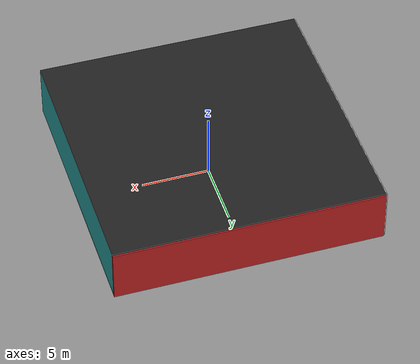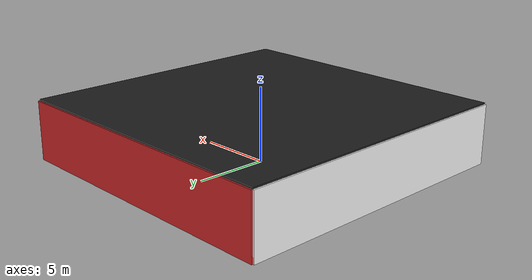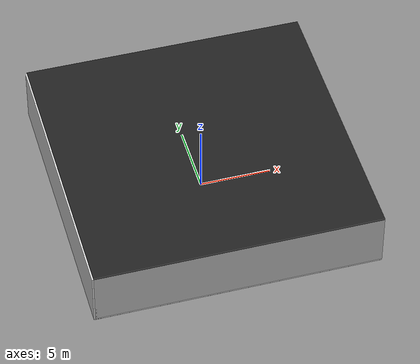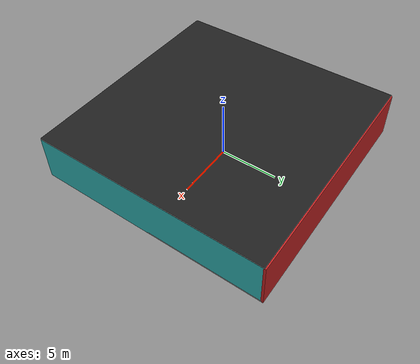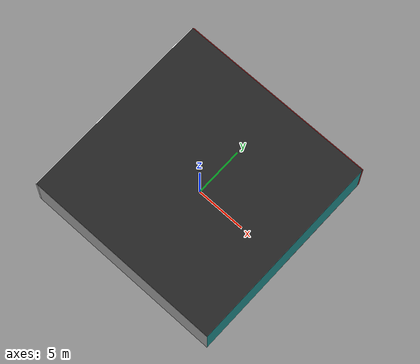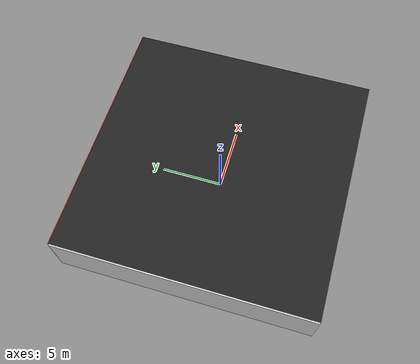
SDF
<sdf version="1.4">
 <world name="default">
  <physics type="ode">
   <max_step_size>0.001</max_step_size>
   <real_time_factor>1</real_time_factor>
   <real_time_update_rate>1000</real_time_update_rate>
   <gravity>0 0 -9.8</gravity>
  </physics>
  <scene><ambient>0.4 0.4 0.4 1</ambient><background>0.7 0.7 0.7 1</background><shadows>1</shadows></scene>
  <model name="Surrounding">
   <static>1</static>
   <link name="Ceiling">
    <collision name="Ceiling_Collision"><geometry><box><size>20 20 0.1</size></box></geometry></collision>
    <visual name="Ceiling_Visual">
     <geometry><box><size>20 20 0.1</size></box></geometry>
     <material>
      <script><uri>file://media/materials/scripts/gazebo.material</uri><name>Gazebo/FlatBlack</name></script>
     </material>
    </visual>
    <pose>0 0 4.05 0 0 0</pose>
   </link>
   <link name="Wall_South">
    <collision name="Wall_South_Collision">
     <geometry><box><size>20 0 4</size></box></geometry>
     <pose>0 0 2 0 -0 0</pose>
    </collision>
    <visual name="Wall_South_Visual">
     <pose>0 0 2 0 -0 0</pose>
     <geometry><box><size>20 0 4</size></box></geometry>
     <material>
      <script><uri>file://media/materials/scripts/gazebo.material</uri><name>Gazebo/PioneerBody</name></script>
     </material>
    </visual>
    <velocity_decay><linear>0</linear><angular>0</angular></velocity_decay>
    <pose>0 -10 0 0 -0 0</pose>
   </link>
   <link name="Wall_East">
    <collision name="Wall_21_Collision">
     <geometry><box><size>20 0 4</size></box></geometry>
     <pose>0 0 2 0 -0 0</pose>
    </collision>
    <visual name="Wall_21_Visual">
     <pose>0 0 2 0 -0 0</pose>
     <geometry><box><size>20 0 4</size></box></geometry>
     <material>
      <script><uri>file://media/materials/scripts/gazebo.material</uri><name>Gazebo/Turquoise</name></script>
     </material>
    </visual>
    <velocity_decay><linear>0</linear><angular>0</angular></velocity_decay>
    <pose>10 0 0 0 -0 1.5708</pose>
   </link>
   <link name="Wall_North">
    <collision name="Wall_22_Collision">
     <geometry><box><size>20 0.2 4</size></box></geometry>
     <pose>0 0 2 0 -0 0</pose>
    </collision>
    <visual name="Wall_22_Visual">
     <pose>0 0 2 0 -0 0</pose>
     <geometry><box><size>20 0.2 4</size></box></geometry>
     <material>
      <script><uri>file://media/materials/scripts/gazebo.material</uri><name>Gazebo/RedGlow</name></script>
     </material>
    </visual>
    <velocity_decay><linear>0</linear><angular>0</angular></velocity_decay>
    <pose>0 10 0 0 -0 0</pose>
   </link>
   <link name="Wall_West">
    <collision name="Wall_23_Collision">
     <geometry><box><size>20 0.2 4</size></box></geometry>
     <pose>0 0 2 0 -0 0</pose>
    </collision>
    <visual name="Wall_23_Visual">
     <pose>0 0 2 0 -0 0</pose>
     <geometry><box><size>20 0.2 4</size></box></geometry>
     <material>
      <script><uri>file://media/materials/scripts/gazebo.material</uri><name>Gazebo/White</name></script>
     </material>
    </visual>
    <velocity_decay><linear>0</linear><angular>0</angular></velocity_decay>
    <pose>-10 0 0 0 0 -1.5708</pose>
   </link>
   <link name="Ground_link">
    <collision name="collision">
     <pose>0 0 .05 0 -0 0</pose>
     <geometry><box><size>20 20 0.1</size></box></geometry>
    </collision>
    <visual name="visual">
     <pose>0 0 .05 0 -0 0</pose>
     <geometry><box><size>20 20 0.1</size></box></geometry>
     <material>
      <script><uri>file://media/materials/scripts/gazebo.material</uri><name>Gazebo/White</name></script>
     </material>
    </visual>
   </link>
   <static>1</static>
  </model>
  <spherical_coordinates>
   <surface_model>EARTH_WGS84</surface_model>
   <latitude_deg>0</latitude_deg>
   <longitude_deg>0</longitude_deg>
   <elevation>0</elevation>
   <heading_deg>0</heading_deg>
  </spherical_coordinates>
  <light name="lightball_0" type="diffuse">
   <diffuse>0.8 0.8 0.8 1</diffuse>
   <specular>0.2 0.2 0.2 1</specular>
   <attenuation>
    <range>100</range>
    <constant>0.7</constant>
    <linear>0.01</linear>
    <quadratic>0.001</quadratic>
   </attenuation>
   <direction>-0.5 0.1 -0.9</direction>
   <pose>6.83384345269 7.25154105673 2.0656657755 0 0 0</pose>
  </light>
  <light name="lightball_1" type="diffuse">
   <diffuse>0.8 0.8 0.8 1</diffuse>
   <specular>0.2 0.2 0.2 1</specular>
   <attenuation>
    <range>100</range>
    <constant>0.7</constant>
    <linear>0.01</linear>
    <quadratic>0.001</quadratic>
   </attenuation>
   <direction>-0.5 0.1 -0.9</direction>
   <pose>8.90981618164 1.24757376152 3.7218367911 0 0 0</pose>
  </light>
  <light name="lightball_2" type="diffuse">
   <diffuse>0.8 0.8 0.8 1</diffuse>
   <specular>0.2 0.2 0.2 1</specular>
   <attenuation>
    <range>100</range>
    <constant>0.7</constant>
    <linear>0.01</linear>
    <quadratic>0.001</quadratic>
   </attenuation>
   <direction>-0.5 0.1 -0.9</direction>
   <pose>-5.76751515415 4.94330516904 0.759942192297 0 0 0</pose>
  </light>
  <light name="lightball_3" type="diffuse">
   <diffuse>0.8 0.8 0.8 1</diffuse>
   <specular>0.2 0.2 0.2 1</specular>
   <attenuation>
    <range>100</range>
    <constant>0.7</constant>
    <linear>0.01</linear>
    <quadratic>0.001</quadratic>
   </attenuation>
   <direction>-0.5 0.1 -0.9</direction>
   <pose>-3.26684212584 7.27502294487 3.68050574337 0 0 0</pose>
  </light>
  <light name="lightball_4" type="diffuse">
   <diffuse>0.8 0.8 0.8 1</diffuse>
   <specular>0.2 0.2 0.2 1</specular>
   <attenuation>
    <range>100</range>
    <constant>0.7</constant>
    <linear>0.01</linear>
    <quadratic>0.001</quadratic>
   </attenuation>
   <direction>-0.5 0.1 -0.9</direction>
   <pose>6.58479164675 -0.464737437446 3.77481399694 0 0 0</pose>
  </light>
  <light name="lightball_5" type="diffuse">
   <diffuse>0.8 0.8 0.8 1</diffuse>
   <specular>0.2 0.2 0.2 1</specular>
   <attenuation>
    <range>100</range>
    <constant>0.7</constant>
    <linear>0.01</linear>
    <quadratic>0.001</quadratic>
   </attenuation>
   <direction>-0.5 0.1 -0.9</direction>
   <pose>-4.39521617747 8.10945773165 2.55916019803 0 0 0</pose>
  </light>
  <light name="lightball_6" type="diffuse">
   <diffuse>0.8 0.8 0.8 1</diffuse>
   <specular>0.2 0.2 0.2 1</specular>
   <attenuation>
    <range>100</range>
    <constant>0.7</constant>
    <linear>0.01</linear>
    <quadratic>0.001</quadratic>
   </attenuation>
   <direction>-0.5 0.1 -0.9</direction>
   <pose>9.03355762684 7.21432174065 1.93887323924 0 0 0</pose>
  </light>
  <light name="lightball_7" type="diffuse">
   <diffuse>0.8 0.8 0.8 1</diffuse>
   <specular>0.2 0.2 0.2 1</specular>
   <attenuation>
    <range>100</range>
    <constant>0.7</constant>
    <linear>0.01</linear>
    <quadratic>0.001</quadratic>
   </attenuation>
   <direction>-0.5 0.1 -0.9</direction>
   <pose>-1.5975276902 0.412689520223 2.68537645011 0 0 0</pose>
  </light>
  <light name="lightball_8" type="diffuse">
   <diffuse>0.8 0.8 0.8 1</diffuse>
   <specular>0.2 0.2 0.2 1</specular>
   <attenuation>
    <range>100</range>
    <constant>0.7</constant>
    <linear>0.01</linear>
    <quadratic>0.001</quadratic>
   </attenuation>
   <direction>-0.5 0.1 -0.9</direction>
   <pose>-8.09229642108 -3.04902288404 1.50868176968 0 0 0</pose>
  </light>
  <light name="lightball_9" type="diffuse">
   <diffuse>0.8 0.8 0.8 1</diffuse>
   <specular>0.2 0.2 0.2 1</specular>
   <attenuation>
    <range>100</range>
    <constant>0.7</constant>
    <linear>0.01</linear>
    <quadratic>0.001</quadratic>
   </attenuation>
   <direction>-0.5 0.1 -0.9</direction>
   <pose>3.74796334006 7.45563861783 0.547352180293 0 0 0</pose>
  </light>
  <include>
   <uri>model://construction_cone</uri>
   <pose>-7.25375497975 -8.11057008902 0 0 0 2.04489791317</pose>
  </include>
  <include>
   <uri>model://textured_shapes</uri>
   <pose>-4.20989382646 -8.09031212159 0 0 0 1.45339689145</pose>
  </include>
  <include><uri>model://cabinet</uri><pose>-4.67429663502 -4.89418513293 0 0 0 1.58661071242</pose></include>
  <include><uri>model://cabinet</uri><pose>-4.38985046337 3.82258135512 0 0 0 2.67270806433</pose></include>
  <include>
   <uri>model://textured_shapes</uri>
   <pose>-1.68981028104 -8.07006120515 0 0 0 1.97748731415</pose>
  </include>
  <include><uri>model://cabinet</uri><pose>-0.80063664437 0.769239316757 0 0 0 1.69598278476</pose></include>
  <include><uri>model://cabinet</uri><pose>-1.76670650014 7.62704161244 0 0 0 0.708771562273</pose></include>
 </world>
</sdf>

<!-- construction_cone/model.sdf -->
<sdf version="1.5">
  <model name="Construction Cone">
    <link name="link">
      <collision name="collision">
        <geometry>
          <mesh>
            <scale>10 10 10</scale>
            <uri>file://isr-testbed/construction_cone/meshes/construction_cone.dae</uri>
          </mesh>
        </geometry>
      </collision>
      <visual name="visual">
        <geometry>
          <mesh>
            <scale>10 10 10</scale>
            <uri>file://isr-testbed/construction_cone/meshes/construction_cone.dae</uri>
          </mesh>
        </geometry>
      </visual>
    </link>
  </model>
</sdf>

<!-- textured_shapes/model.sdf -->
<sdf version="1.6">
  <model name="textured_shapes">
    <pose>0 0 0.5 0 0 0</pose>
    <link name="box">
      <pose>0 -1.5 0 0 0 0</pose>
      <collision name="collision">
        <geometry>
          <box>
            <size>1 1 1</size>
          </box>
        </geometry>
      </collision>
      <visual name="visual">
        <geometry>
          <box>
            <size>1 1 1</size>
          </box>
        </geometry>
        <material>
          <script>
            <uri>model://../model_source/models/textured_shapes/materials/scripts</uri>
            <uri>model://../model_source/models/textured_shapes/materials/textures</uri>
            <name>TexturedShape/Squares</name>
          </script>
        </material>
      </visual>
    </link>
    <link name="sphere">
      <collision name="collision">
        <geometry>
          <sphere>
            <radius>0.5</radius>
          </sphere>
        </geometry>
      </collision>
      <visual name="visual">
        <geometry>
          <sphere>
            <radius>0.5</radius>
          </sphere>
        </geometry>
        <material>
          <script>
            <uri>model://../model_source/models/textured_shapes/materials/scripts</uri>
            <uri>model://../model_source/models/textured_shapes/materials/textures</uri>
            <name>TexturedShape/Squares</name>
          </script>
        </material>
      </visual>
    </link>
    <link name="cylinder">
      <pose>0 1.5 0 0 0 0</pose>
      <collision name="collision">
        <geometry>
          <cylinder>
            <radius>0.5</radius>
            <length>1</length>
          </cylinder>
        </geometry>
      </collision>
      <visual name="visual">
        <geometry>
          <cylinder>
            <radius>0.5</radius>
            <length>1</length>
          </cylinder>
        </geometry>
        <material>
          <script>
            <uri>model://../model_source/models/textured_shapes/materials/scripts</uri>
            <uri>model://../model_source/models/textured_shapes/materials/textures</uri>
            <name>TexturedShape/Squares</name>
          </script>
        </material>
      </visual>
    </link>
  </model>
</sdf>

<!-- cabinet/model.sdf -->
<sdf version="1.5">
  <model name="cabinet">
    <static>true</static>
    <link name="cabinet_bottom_plate">
      <inertial>
        <pose>0 0 -1 0 0 0</pose>
        <inertia>
          <ixx>2.050000</ixx>
          <ixy>0</ixy>
          <ixz>0</ixz>
          <iyy>2.050000</iyy>
          <iyz>0</iyz>
          <izz>2.050000</izz>
        </inertia>
        <mass>25.000000</mass>
      </inertial>
      <collision name="cabinet_bottom_plate_geom">
        <pose>0 0 0.010000 0 0 0</pose>
        <geometry>
          <box>
            <size>0.450000 0.450000 0.020000</size>
          </box>
        </geometry>
      </collision>
      <visual name="cabinet_bottom_plate_geom_visual">
        <pose>0 0 0.010000 0 0 0</pose>
        <geometry>
          <box>
            <size>0.450000 0.450000 0.020000</size>
          </box>
        </geometry>
        <material>
          <script>
            <uri>model://media/materials/scripts/gazebo.material</uri>
            <name>Gazebo/Wood</name>
          </script>
        </material>
      </visual>
      <collision name="cabinet_bottom_plate_geom_cabinet_back_plate">
        <pose>0.235000 0 0.510000 0 0 0</pose>
        <geometry>
          <box>
            <size>0.020000 0.450000 1.020000</size>
          </box>
        </geometry>
      </collision>
      <visual name="cabinet_bottom_plate_geom_cabinet_back_plate_visual">
        <pose>0.235000 0 0.510000 0 0 0</pose>
        <geometry>
          <box>
            <size>0.020000 0.450000 1.020000</size>
          </box>
        </geometry>
        <material>
          <script>
            <uri>model://media/materials/scripts/gazebo.material</uri>
            <name>Gazebo/Wood</name>
          </script>
        </material>
      </visual>
      <collision name="cabinet_bottom_plate_geom_cabinet_left_plate">
        <pose>0 0.235000 0.510000 0 0 0</pose>
        <geometry>
          <box>
            <size>0.450000 0.020000 1.020000</size>
          </box>
        </geometry>
      </collision>
      <visual name="cabinet_bottom_plate_geom_cabinet_left_plate_visual">
        <pose>0 0.235000 0.510000 0 0 0</pose>
        <geometry>
          <box>
            <size>0.450000 0.020000 1.020000</size>
          </box>
        </geometry>
        <material>
          <script>
            <uri>model://media/materials/scripts/gazebo.material</uri>
            <name>Gazebo/Wood</name>
          </script>
        </material>
      </visual>
      <collision name="cabinet_bottom_plate_geom_cabinet_middle_plate">
        <pose>0 0 0.510000 0 0 0</pose>
        <geometry>
          <box>
            <size>0.450000 0.450000 0.020000</size>
          </box>
        </geometry>
      </collision>
      <visual name="cabinet_bottom_plate_geom_cabinet_middle_plate_visual">
        <pose>0 0 0.510000 0 0 0</pose>
        <geometry>
          <box>
            <size>0.450000 0.450000 0.020000</size>
          </box>
        </geometry>
        <material>
          <script>
            <uri>model://media/materials/scripts/gazebo.material</uri>
            <name>Gazebo/Wood</name>
          </script>
        </material>
      </visual>
      <collision name="cabinet_bottom_plate_geom_cabinet_right_plate">
        <pose>0 -0.235000 0.510000 0 0 0</pose>
        <geometry>
          <box>
            <size>0.450000 0.020000 1.020000</size>
          </box>
        </geometry>
      </collision>
      <visual name="cabinet_bottom_plate_geom_cabinet_right_plate_visual">
        <pose>0 -0.235000 0.510000 0 0 0</pose>
        <geometry>
          <box>
            <size>0.450000 0.020000 1.020000</size>
          </box>
        </geometry>
        <material>
          <script>
            <uri>model://media/materials/scripts/gazebo.material</uri>
            <name>Gazebo/Wood</name>
          </script>
        </material>
      </visual>
      <collision name="cabinet_bottom_plate_geom_cabinet_top_plate">
        <pose>0 0 1.010000 0 0 0</pose>
        <geometry>
          <box>
            <size>0.450000 0.450000 0.020000</size>
          </box>
        </geometry>
      </collision>
      <visual name="cabinet_bottom_plate_geom_cabinet_top_plate_visual">
        <pose>0 0 1.010000 0 0 0</pose>
        <geometry>
          <box>
            <size>0.450000 0.450000 0.020000</size>
          </box>
        </geometry>
        <material>
          <script>
            <uri>model://media/materials/scripts/gazebo.material</uri>
            <name>Gazebo/Wood</name>
          </script>
        </material>
      </visual>
    </link>
  </model>
</sdf>
